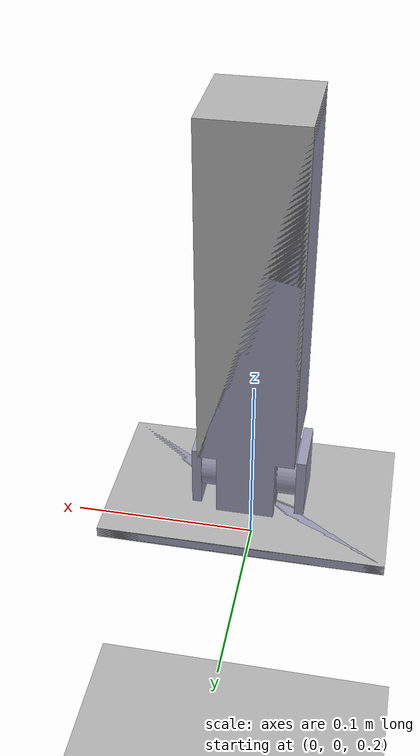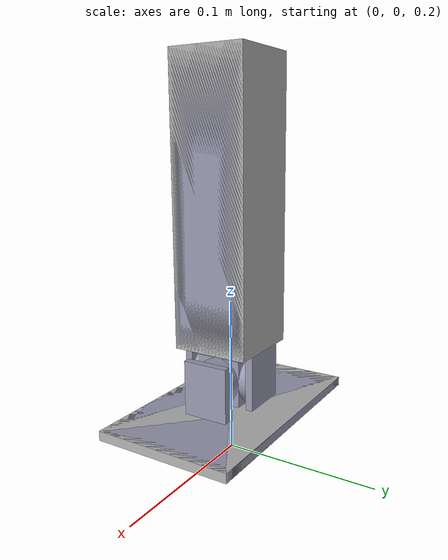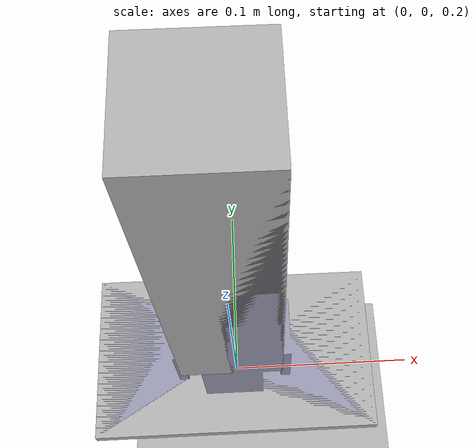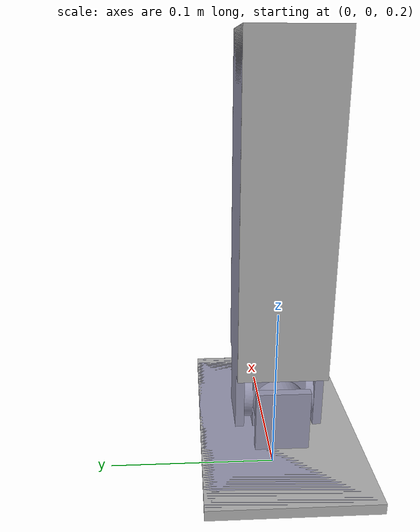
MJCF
<mujoco model="toetoe">
    <compiler angle="radian" meshdir="../meshes/"/>
    <size njmax="500" nconmax="100" />

    <default>
		<motor ctrllimited="true" ctrlrange="-300 300"/>
		<joint damping="10" stiffness = "0"/>
		<geom rgba = ".7 .7 .7 1"/>
		<default class="viz">
			<geom contype="0" conaffinity="0" group="1" type="mesh" rgba=".6 .6 .7 1" />
		</default>

		<default class="velocity">
			<velocity ctrllimited="false" forcelimited="false" ></velocity>
		</default>

		<default class="FTsensor">
            <site type="cylinder" size="0.005 0.005" group="4" rgba=".1 .1 .9 1"/>
		</default>

		<default class="position">
			<position ctrllimited="false" forcelimited="false" ></position>
		</default>

		<default class="Leg">
            <joint damping="1" frictionloss="4"/>
        </default>

	</default>

    <option timestep='0.0005'/>

    <asset>
        <mesh name="base_link" file="base_link.stl" />
        <mesh name="ankle_link" file="ankle_link.stl" />
        <mesh name="foot_link" file="foot_link.stl" />
        <texture name="texplane" type="2d" builtin="checker" rgb1=".2 .3 .4" rgb2=".1 0.15 0.2"
        	    width="512" height="512"/>
		<texture name="groundplane" type="2d" builtin="checker" rgb1=".325 .326 .325"
				rgb2=".22 .22 .22" width="100" height="100" mark="none" markrgb=".8 .8 .8"/>
		<material name='MatPlane' reflectance='0.3' texture="texplane" texrepeat="1 1" texuniform="true"/>
		<material name="MatGnd" texture="groundplane"  texrepeat="20 20" specular="1" shininess=".3" reflectance="0.00001"/>
    </asset>

    <worldbody>
    <geom name='floor' pos='0 0 0' size='5 5 .125' type='plane' material="MatPlane" condim = "3" contype = "0"/>
	<light directional="true" cutoff="60" exponent="1" diffuse="1 1 1" specular=".1 .1 .1" pos="1 1 1.5" dir="-1 -1 -1.3"/>

        <body name="base_link" pos="0 0 0.226">
            <joint type="free" limited='false' damping="0" stiffness="0" armature="0"/>
            <inertial pos="0 0 0.133549" mass="1.2434" diaginertia="0.0038711 0.0038588 0.00052279" />
            <geom name="Base" type="box" size="0.025 0.025 0.09" pos="0 0 0.136"/>
            <geom name="base_link" class="viz" mesh="base_link" pos="0 0 0.226"/>
            <site name="com_imu" type="cylinder" size="0.005 0.005" pos="0 0 0.226" group="4" rgba=".9 .1 .1 1"/><!--red-->
            <body name="ankle_link" pos="0 0 0.026">
                <inertial pos="0 0 0" quat="0 0.707107 0 0.707107" mass="0.13016" diaginertia="3.5626e-05 3.0815e-05 2.2187e-05" />
                <joint name="ankle_pitch" pos="0 0 0" axis="0 1 0" limited="true" range="-3.14 3.14" />
                <geom name="ankle_link" class="viz" mesh="ankle_link"/>
                <body name="foot_link" pos="0 0 0">
                    <inertial pos="0 0 -0.020648" quat="0 0.707107 0 0.707107" mass="0.24705" diaginertia="0.00058131 0.00044566 0.00016385" />
                    <joint name="ankle_roll" pos="0 0 0" axis="1 0 0" limited="true" range="-3.14 3.14" />
                    <geom name="Foot" type="box" size="0.075 0.045 0.003" pos="0 0 -0.023"/>
                    <geom name="foot_link" class="viz" mesh="foot_link"/>
                    <site class="FTsensor" name="ankle_ft" pos="0 0 -0.02"/><!--blue-->
                </body>
            </body>
        </body>
    </worldbody>

    <actuator>
        <position class="position" ctrllimited="true" ctrlrange="-3 3"  name="Ankle_pitch" joint="ankle_pitch" kp = "40"/>
        <position class="position" ctrllimited="true" ctrlrange="-3 3"  name="Ankle_roll" joint="ankle_roll" kp = "40"/>
    </actuator>

    <sensor>
        <force name="Ankle_Force" site="ankle_ft"/>
        <torque name="Ankle_Torque" site="ankle_ft"/>
    </sensor>
</mujoco>
